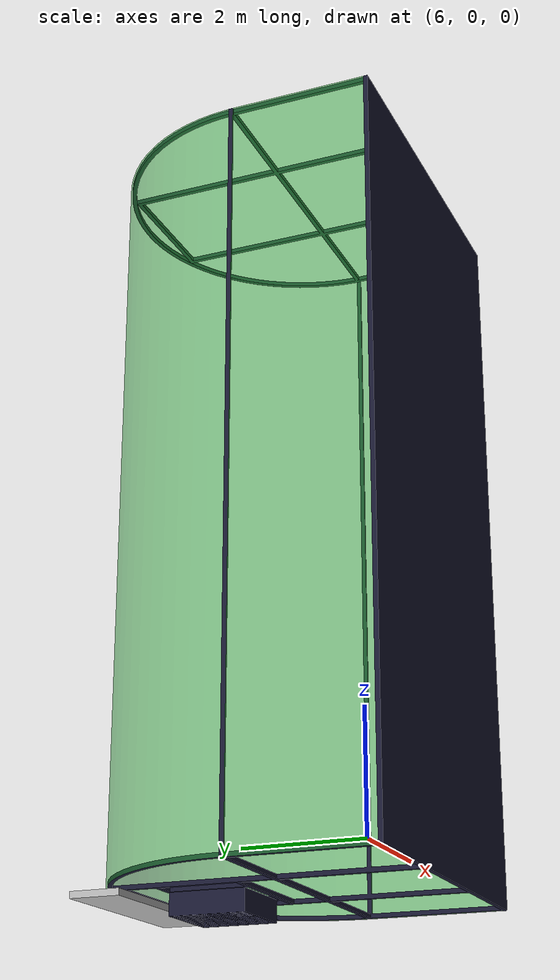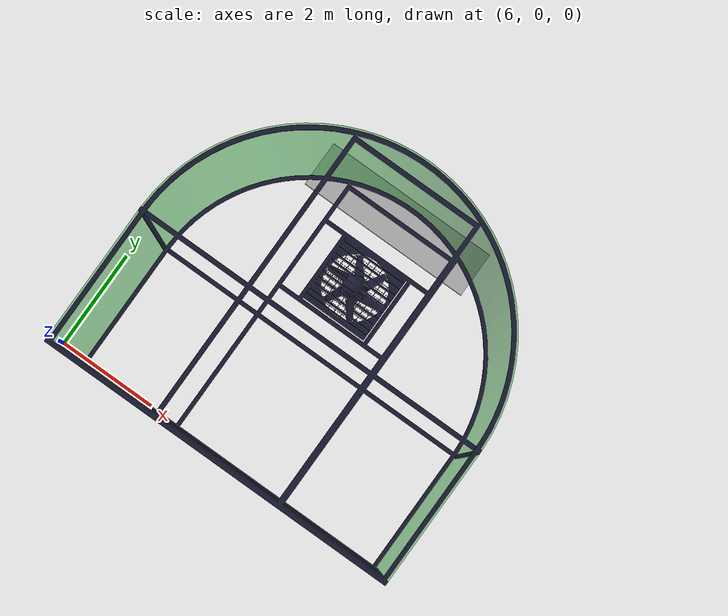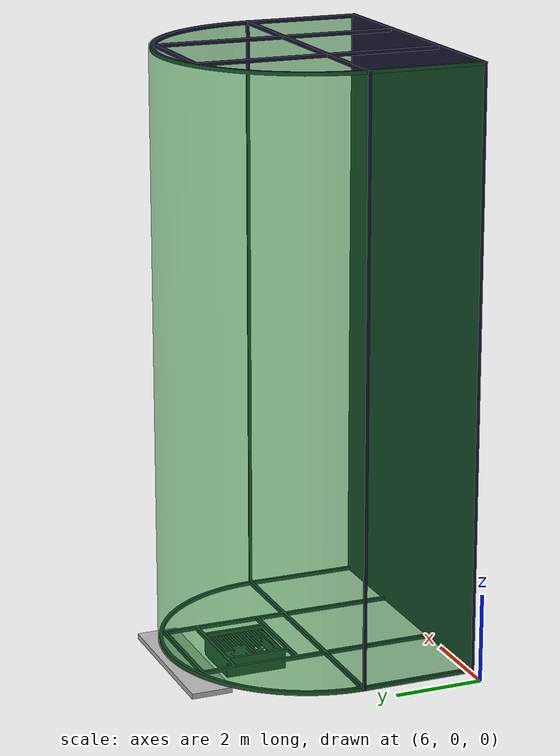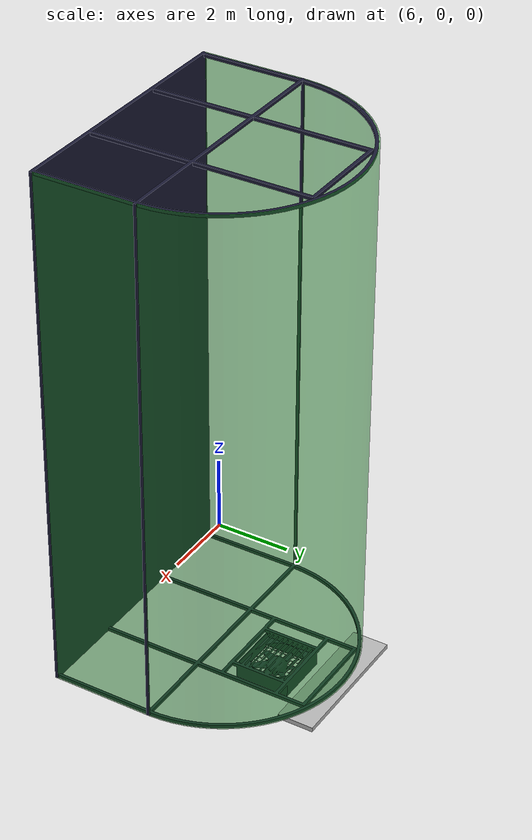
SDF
<sdf version="1.6">
  <model name="green_house">
    <static>true</static>

    <link name="link">
      <collision name="collision">
        <geometry>
          <mesh>
             <scale>0.001 0.001 0.001</scale>
            <uri>file://green_house/meshes/greenhouse_eyantra_glass.stl</uri>
          </mesh>
        </geometry>
      </collision>
      <visual name="branch">
        <geometry>
          <mesh>
                <scale>0.001 0.001 0.001</scale>
            <uri>file://green_house/meshes/greenhouse_eyantra_glass.stl</uri>

          </mesh>
        </geometry>

<material>
  <script>
    <name>Gazebo/GreenTransparent</name>
    <uri>file://media/materials/scripts/gazebo.material</uri>
  </script>
</material>

      </visual>
    </link>

    <link name="link2">
      <collision name="collision2">
        <geometry>
          <mesh>
             <scale>0.001 0.001 0.001</scale>
            <uri>file://green_house/meshes/greenhouse_eyantra_skeleton.stl</uri>
          </mesh>
        </geometry>
      </collision>
      <visual name="branch2">
        <geometry>
          <mesh>
                <scale>0.001 0.001 0.001</scale>
            <uri>file://green_house/meshes/greenhouse_eyantra_skeleton.stl</uri>

          </mesh>
        </geometry>

      <material>
          <ambient>0.1 0.1 0.1 1</ambient>
          <diffuse>0.1 0.1 0.2 1</diffuse>
          <specular>0 0 0 0</specular>
          <emissive>0 0 0 1</emissive>
        </material>

      </visual>
    </link>

    <link name="link3">
 <pose>9.7 5.5 -0.2 0 3.14 0</pose>
      <collision name="logo">
        <geometry>
          <mesh>
       <scale>400 400 400</scale>
            <uri>file://green_house/meshes/logo2.dae</uri>
          </mesh>
        </geometry>
      </collision>
      <visual name="logo_c">
        <geometry>
          <mesh>
  <scale>400 400 400</scale>
            <uri>file://green_house/meshes/logo2.dae</uri>

          </mesh>
        </geometry>

      </visual>
    </link>

        <joint name="logo" type="fixed">
            <pose>0 0 0 0 0 0</pose>
            <child>link3</child>
            <parent>link2</parent>

        </joint>

  </model>
</sdf>
